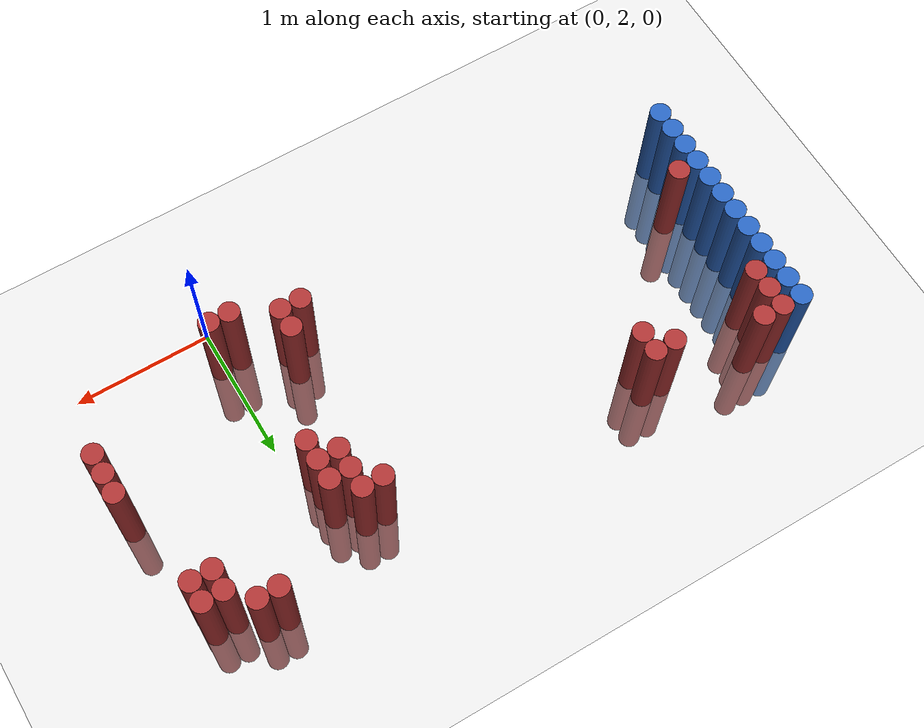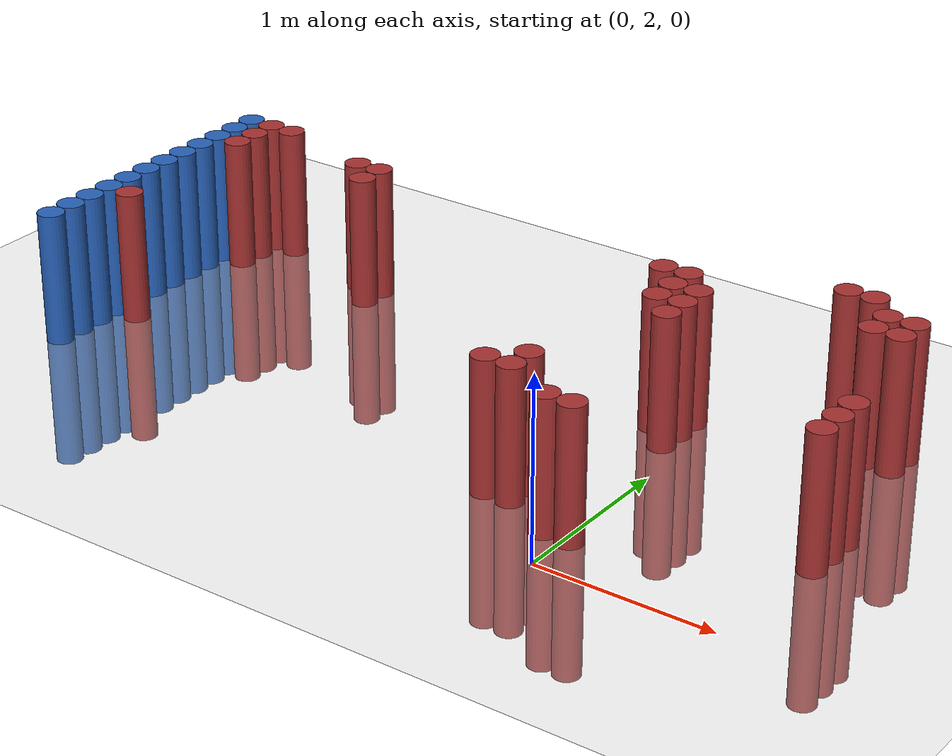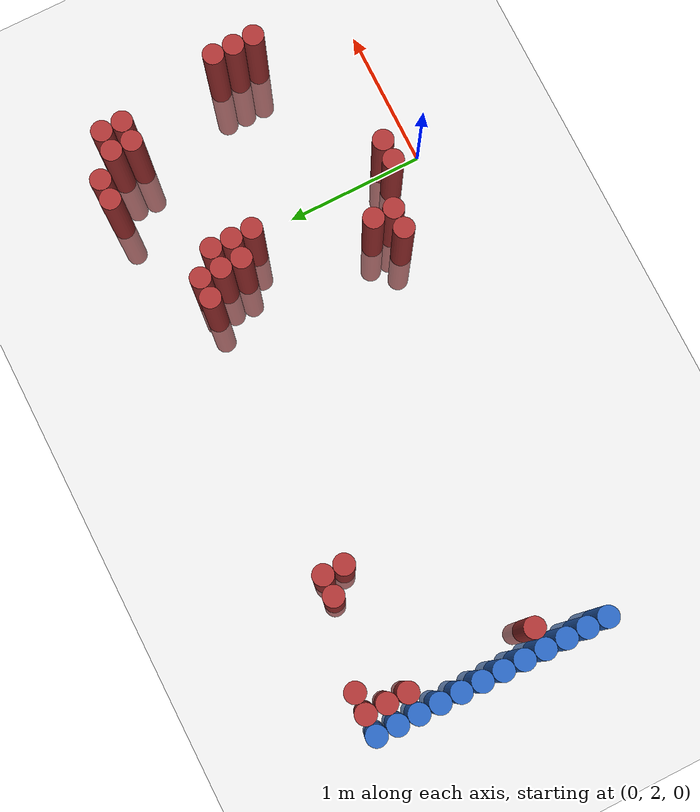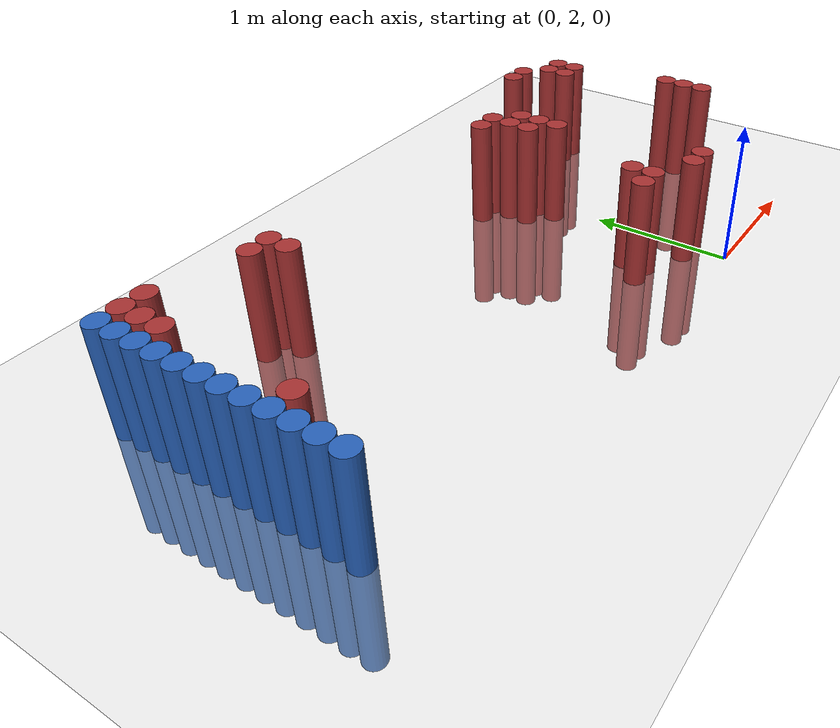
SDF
<sdf version="1.6">
 <world name="default">
  <model name="ground_plane">
   <static>1</static>
   <link name="link">
    <collision name="collision">
     <geometry><plane><normal>0 0 1</normal><size>100 100</size></plane></geometry>
     <surface><friction><ode><mu>100</mu><mu2>50</mu2></ode></friction></surface>
    </collision>
    <visual name="visual">
     <cast_shadows>0</cast_shadows>
     <geometry><plane><normal>0 0 1</normal><size>100 100</size></plane></geometry>
     <material>
      <script><uri>file://media/materials/scripts/gazebo.material</uri><name>Gazebo/Grey</name></script>
     </material>
    </visual>
   </link>
  </model>
  <model name="unit_cylinder_147">
   <static>1</static>
   <pose>-3.425000 2.425000 0.000000 0.000000 0.000000 0.000000</pose>
   <link name="link">
    <inertial>
     <mass>1</mass>
     <inertia><ixx>0.145833</ixx><ixy>0</ixy><ixz>0</ixz><iyy>0.145833</iyy><iyz>0</iyz><izz>0.125</izz></inertia>
    </inertial>
    <collision name="collision">
     <geometry><cylinder><radius>0.075000</radius><length>1.5</length></cylinder></geometry>
    </collision>
    <visual name="visual">
     <geometry><cylinder><radius>0.075000</radius><length>1.5</length></cylinder></geometry>
     <material>
      <ambient>0.152000 0.379000 0.720000 1</ambient>
      <diffuse>0.152000 0.379000 0.720000 1</diffuse>
     </material>
     <material>
      <script><name>Gazebo/Grey</name><uri>file://media/materials/scripts/gazebo.material</uri></script>
     </material>
    </visual>
   </link>
  </model>
  <model name="unit_cylinder_149">
   <static>1</static>
   <pose>-3.425000 2.575000 0.000000 0.000000 0.000000 0.000000</pose>
   <link name="link">
    <inertial>
     <mass>1</mass>
     <inertia><ixx>0.145833</ixx><ixy>0</ixy><ixz>0</ixz><iyy>0.145833</iyy><iyz>0</iyz><izz>0.125</izz></inertia>
    </inertial>
    <collision name="collision">
     <geometry><cylinder><radius>0.075000</radius><length>1.5</length></cylinder></geometry>
    </collision>
    <visual name="visual">
     <geometry><cylinder><radius>0.075000</radius><length>1.5</length></cylinder></geometry>
     <material>
      <ambient>0.152000 0.379000 0.720000 1</ambient>
      <diffuse>0.152000 0.379000 0.720000 1</diffuse>
     </material>
     <material>
      <script><name>Gazebo/Grey</name><uri>file://media/materials/scripts/gazebo.material</uri></script>
     </material>
    </visual>
   </link>
  </model>
  <model name="unit_cylinder_151">
   <static>1</static>
   <pose>-3.425000 2.725000 0.000000 0.000000 0.000000 0.000000</pose>
   <link name="link">
    <inertial>
     <mass>1</mass>
     <inertia><ixx>0.145833</ixx><ixy>0</ixy><ixz>0</ixz><iyy>0.145833</iyy><iyz>0</iyz><izz>0.125</izz></inertia>
    </inertial>
    <collision name="collision">
     <geometry><cylinder><radius>0.075000</radius><length>1.5</length></cylinder></geometry>
    </collision>
    <visual name="visual">
     <geometry><cylinder><radius>0.075000</radius><length>1.5</length></cylinder></geometry>
     <material>
      <ambient>0.152000 0.379000 0.720000 1</ambient>
      <diffuse>0.152000 0.379000 0.720000 1</diffuse>
     </material>
     <material>
      <script><name>Gazebo/Grey</name><uri>file://media/materials/scripts/gazebo.material</uri></script>
     </material>
    </visual>
   </link>
  </model>
  <model name="unit_cylinder_153">
   <static>1</static>
   <pose>-3.425000 2.875000 0.000000 0.000000 0.000000 0.000000</pose>
   <link name="link">
    <inertial>
     <mass>1</mass>
     <inertia><ixx>0.145833</ixx><ixy>0</ixy><ixz>0</ixz><iyy>0.145833</iyy><iyz>0</iyz><izz>0.125</izz></inertia>
    </inertial>
    <collision name="collision">
     <geometry><cylinder><radius>0.075000</radius><length>1.5</length></cylinder></geometry>
    </collision>
    <visual name="visual">
     <geometry><cylinder><radius>0.075000</radius><length>1.5</length></cylinder></geometry>
     <material>
      <ambient>0.152000 0.379000 0.720000 1</ambient>
      <diffuse>0.152000 0.379000 0.720000 1</diffuse>
     </material>
     <material>
      <script><name>Gazebo/Grey</name><uri>file://media/materials/scripts/gazebo.material</uri></script>
     </material>
    </visual>
   </link>
  </model>
  <model name="unit_cylinder_155">
   <static>1</static>
   <pose>-3.425000 3.025000 0.000000 0.000000 0.000000 0.000000</pose>
   <link name="link">
    <inertial>
     <mass>1</mass>
     <inertia><ixx>0.145833</ixx><ixy>0</ixy><ixz>0</ixz><iyy>0.145833</iyy><iyz>0</iyz><izz>0.125</izz></inertia>
    </inertial>
    <collision name="collision">
     <geometry><cylinder><radius>0.075000</radius><length>1.5</length></cylinder></geometry>
    </collision>
    <visual name="visual">
     <geometry><cylinder><radius>0.075000</radius><length>1.5</length></cylinder></geometry>
     <material>
      <ambient>0.152000 0.379000 0.720000 1</ambient>
      <diffuse>0.152000 0.379000 0.720000 1</diffuse>
     </material>
     <material>
      <script><name>Gazebo/Grey</name><uri>file://media/materials/scripts/gazebo.material</uri></script>
     </material>
    </visual>
   </link>
  </model>
  <model name="unit_cylinder_157">
   <static>1</static>
   <pose>-3.425000 3.175000 0.000000 0.000000 0.000000 0.000000</pose>
   <link name="link">
    <inertial>
     <mass>1</mass>
     <inertia><ixx>0.145833</ixx><ixy>0</ixy><ixz>0</ixz><iyy>0.145833</iyy><iyz>0</iyz><izz>0.125</izz></inertia>
    </inertial>
    <collision name="collision">
     <geometry><cylinder><radius>0.075000</radius><length>1.5</length></cylinder></geometry>
    </collision>
    <visual name="visual">
     <geometry><cylinder><radius>0.075000</radius><length>1.5</length></cylinder></geometry>
     <material>
      <ambient>0.152000 0.379000 0.720000 1</ambient>
      <diffuse>0.152000 0.379000 0.720000 1</diffuse>
     </material>
     <material>
      <script><name>Gazebo/Grey</name><uri>file://media/materials/scripts/gazebo.material</uri></script>
     </material>
    </visual>
   </link>
  </model>
  <model name="unit_cylinder_159">
   <static>1</static>
   <pose>-3.425000 3.325000 0.000000 0.000000 0.000000 0.000000</pose>
   <link name="link">
    <inertial>
     <mass>1</mass>
     <inertia><ixx>0.145833</ixx><ixy>0</ixy><ixz>0</ixz><iyy>0.145833</iyy><iyz>0</iyz><izz>0.125</izz></inertia>
    </inertial>
    <collision name="collision">
     <geometry><cylinder><radius>0.075000</radius><length>1.5</length></cylinder></geometry>
    </collision>
    <visual name="visual">
     <geometry><cylinder><radius>0.075000</radius><length>1.5</length></cylinder></geometry>
     <material>
      <ambient>0.152000 0.379000 0.720000 1</ambient>
      <diffuse>0.152000 0.379000 0.720000 1</diffuse>
     </material>
     <material>
      <script><name>Gazebo/Grey</name><uri>file://media/materials/scripts/gazebo.material</uri></script>
     </material>
    </visual>
   </link>
  </model>
  <model name="unit_cylinder_161">
   <static>1</static>
   <pose>-3.425000 3.475000 0.000000 0.000000 0.000000 0.000000</pose>
   <link name="link">
    <inertial>
     <mass>1</mass>
     <inertia><ixx>0.145833</ixx><ixy>0</ixy><ixz>0</ixz><iyy>0.145833</iyy><iyz>0</iyz><izz>0.125</izz></inertia>
    </inertial>
    <collision name="collision">
     <geometry><cylinder><radius>0.075000</radius><length>1.5</length></cylinder></geometry>
    </collision>
    <visual name="visual">
     <geometry><cylinder><radius>0.075000</radius><length>1.5</length></cylinder></geometry>
     <material>
      <ambient>0.152000 0.379000 0.720000 1</ambient>
      <diffuse>0.152000 0.379000 0.720000 1</diffuse>
     </material>
     <material>
      <script><name>Gazebo/Grey</name><uri>file://media/materials/scripts/gazebo.material</uri></script>
     </material>
    </visual>
   </link>
  </model>
  <model name="unit_cylinder_163">
   <static>1</static>
   <pose>-3.425000 3.625000 0.000000 0.000000 0.000000 0.000000</pose>
   <link name="link">
    <inertial>
     <mass>1</mass>
     <inertia><ixx>0.145833</ixx><ixy>0</ixy><ixz>0</ixz><iyy>0.145833</iyy><iyz>0</iyz><izz>0.125</izz></inertia>
    </inertial>
    <collision name="collision">
     <geometry><cylinder><radius>0.075000</radius><length>1.5</length></cylinder></geometry>
    </collision>
    <visual name="visual">
     <geometry><cylinder><radius>0.075000</radius><length>1.5</length></cylinder></geometry>
     <material>
      <ambient>0.152000 0.379000 0.720000 1</ambient>
      <diffuse>0.152000 0.379000 0.720000 1</diffuse>
     </material>
     <material>
      <script><name>Gazebo/Grey</name><uri>file://media/materials/scripts/gazebo.material</uri></script>
     </material>
    </visual>
   </link>
  </model>
  <model name="unit_cylinder_165">
   <static>1</static>
   <pose>-3.425000 3.775000 0.000000 0.000000 0.000000 0.000000</pose>
   <link name="link">
    <inertial>
     <mass>1</mass>
     <inertia><ixx>0.145833</ixx><ixy>0</ixy><ixz>0</ixz><iyy>0.145833</iyy><iyz>0</iyz><izz>0.125</izz></inertia>
    </inertial>
    <collision name="collision">
     <geometry><cylinder><radius>0.075000</radius><length>1.5</length></cylinder></geometry>
    </collision>
    <visual name="visual">
     <geometry><cylinder><radius>0.075000</radius><length>1.5</length></cylinder></geometry>
     <material>
      <ambient>0.152000 0.379000 0.720000 1</ambient>
      <diffuse>0.152000 0.379000 0.720000 1</diffuse>
     </material>
     <material>
      <script><name>Gazebo/Grey</name><uri>file://media/materials/scripts/gazebo.material</uri></script>
     </material>
    </visual>
   </link>
  </model>
  <model name="unit_cylinder_167">
   <static>1</static>
   <pose>-3.425000 3.925000 0.000000 0.000000 0.000000 0.000000</pose>
   <link name="link">
    <inertial>
     <mass>1</mass>
     <inertia><ixx>0.145833</ixx><ixy>0</ixy><ixz>0</ixz><iyy>0.145833</iyy><iyz>0</iyz><izz>0.125</izz></inertia>
    </inertial>
    <collision name="collision">
     <geometry><cylinder><radius>0.075000</radius><length>1.5</length></cylinder></geometry>
    </collision>
    <visual name="visual">
     <geometry><cylinder><radius>0.075000</radius><length>1.5</length></cylinder></geometry>
     <material>
      <ambient>0.152000 0.379000 0.720000 1</ambient>
      <diffuse>0.152000 0.379000 0.720000 1</diffuse>
     </material>
     <material>
      <script><name>Gazebo/Grey</name><uri>file://media/materials/scripts/gazebo.material</uri></script>
     </material>
    </visual>
   </link>
  </model>
  <model name="unit_cylinder_169">
   <static>1</static>
   <pose>-3.425000 4.075000 0.000000 0.000000 0.000000 0.000000</pose>
   <link name="link">
    <inertial>
     <mass>1</mass>
     <inertia><ixx>0.145833</ixx><ixy>0</ixy><ixz>0</ixz><iyy>0.145833</iyy><iyz>0</iyz><izz>0.125</izz></inertia>
    </inertial>
    <collision name="collision">
     <geometry><cylinder><radius>0.075000</radius><length>1.5</length></cylinder></geometry>
    </collision>
    <visual name="visual">
     <geometry><cylinder><radius>0.075000</radius><length>1.5</length></cylinder></geometry>
     <material>
      <ambient>0.152000 0.379000 0.720000 1</ambient>
      <diffuse>0.152000 0.379000 0.720000 1</diffuse>
     </material>
     <material>
      <script><name>Gazebo/Grey</name><uri>file://media/materials/scripts/gazebo.material</uri></script>
     </material>
    </visual>
   </link>
  </model>
  <model name="unit_cylinder_237">
   <static>1</static>
   <pose>-3.425000 2.425000 0.000000 0.000000 0.000000 0.000000</pose>
   <link name="link">
    <inertial>
     <mass>1</mass>
     <inertia><ixx>0.145833</ixx><ixy>0</ixy><ixz>0</ixz><iyy>0.145833</iyy><iyz>0</iyz><izz>0.125</izz></inertia>
    </inertial>
    <collision name="collision">
     <geometry><cylinder><radius>0.075000</radius><length>1.5</length></cylinder></geometry>
    </collision>
    <visual name="visual">
     <geometry><cylinder><radius>0.075000</radius><length>1.5</length></cylinder></geometry>
     <material>
      <ambient>0.152000 0.379000 0.720000 1</ambient>
      <diffuse>0.152000 0.379000 0.720000 1</diffuse>
     </material>
     <material>
      <script><name>Gazebo/Grey</name><uri>file://media/materials/scripts/gazebo.material</uri></script>
     </material>
    </visual>
   </link>
  </model>
  <model name="unit_cylinder_238">
   <static>1</static>
   <pose>-3.425000 2.575000 0.000000 0.000000 0.000000 0.000000</pose>
   <link name="link">
    <inertial>
     <mass>1</mass>
     <inertia><ixx>0.145833</ixx><ixy>0</ixy><ixz>0</ixz><iyy>0.145833</iyy><iyz>0</iyz><izz>0.125</izz></inertia>
    </inertial>
    <collision name="collision">
     <geometry><cylinder><radius>0.075000</radius><length>1.5</length></cylinder></geometry>
    </collision>
    <visual name="visual">
     <geometry><cylinder><radius>0.075000</radius><length>1.5</length></cylinder></geometry>
     <material>
      <ambient>0.152000 0.379000 0.720000 1</ambient>
      <diffuse>0.152000 0.379000 0.720000 1</diffuse>
     </material>
     <material>
      <script><name>Gazebo/Grey</name><uri>file://media/materials/scripts/gazebo.material</uri></script>
     </material>
    </visual>
   </link>
  </model>
  <model name="unit_cylinder_239">
   <static>1</static>
   <pose>-3.425000 2.725000 0.000000 0.000000 0.000000 0.000000</pose>
   <link name="link">
    <inertial>
     <mass>1</mass>
     <inertia><ixx>0.145833</ixx><ixy>0</ixy><ixz>0</ixz><iyy>0.145833</iyy><iyz>0</iyz><izz>0.125</izz></inertia>
    </inertial>
    <collision name="collision">
     <geometry><cylinder><radius>0.075000</radius><length>1.5</length></cylinder></geometry>
    </collision>
    <visual name="visual">
     <geometry><cylinder><radius>0.075000</radius><length>1.5</length></cylinder></geometry>
     <material>
      <ambient>0.152000 0.379000 0.720000 1</ambient>
      <diffuse>0.152000 0.379000 0.720000 1</diffuse>
     </material>
     <material>
      <script><name>Gazebo/Grey</name><uri>file://media/materials/scripts/gazebo.material</uri></script>
     </material>
    </visual>
   </link>
  </model>
  <model name="unit_cylinder_240">
   <static>1</static>
   <pose>-3.425000 2.875000 0.000000 0.000000 0.000000 0.000000</pose>
   <link name="link">
    <inertial>
     <mass>1</mass>
     <inertia><ixx>0.145833</ixx><ixy>0</ixy><ixz>0</ixz><iyy>0.145833</iyy><iyz>0</iyz><izz>0.125</izz></inertia>
    </inertial>
    <collision name="collision">
     <geometry><cylinder><radius>0.075000</radius><length>1.5</length></cylinder></geometry>
    </collision>
    <visual name="visual">
     <geometry><cylinder><radius>0.075000</radius><length>1.5</length></cylinder></geometry>
     <material>
      <ambient>0.152000 0.379000 0.720000 1</ambient>
      <diffuse>0.152000 0.379000 0.720000 1</diffuse>
     </material>
     <material>
      <script><name>Gazebo/Grey</name><uri>file://media/materials/scripts/gazebo.material</uri></script>
     </material>
    </visual>
   </link>
  </model>
  <model name="unit_cylinder_241">
   <static>1</static>
   <pose>-3.425000 3.025000 0.000000 0.000000 0.000000 0.000000</pose>
   <link name="link">
    <inertial>
     <mass>1</mass>
     <inertia><ixx>0.145833</ixx><ixy>0</ixy><ixz>0</ixz><iyy>0.145833</iyy><iyz>0</iyz><izz>0.125</izz></inertia>
    </inertial>
    <collision name="collision">
     <geometry><cylinder><radius>0.075000</radius><length>1.5</length></cylinder></geometry>
    </collision>
    <visual name="visual">
     <geometry><cylinder><radius>0.075000</radius><length>1.5</length></cylinder></geometry>
     <material>
      <ambient>0.152000 0.379000 0.720000 1</ambient>
      <diffuse>0.152000 0.379000 0.720000 1</diffuse>
     </material>
     <material>
      <script><name>Gazebo/Grey</name><uri>file://media/materials/scripts/gazebo.material</uri></script>
     </material>
    </visual>
   </link>
  </model>
  <model name="unit_cylinder_242">
   <static>1</static>
   <pose>-3.425000 3.175000 0.000000 0.000000 0.000000 0.000000</pose>
   <link name="link">
    <inertial>
     <mass>1</mass>
     <inertia><ixx>0.145833</ixx><ixy>0</ixy><ixz>0</ixz><iyy>0.145833</iyy><iyz>0</iyz><izz>0.125</izz></inertia>
    </inertial>
    <collision name="collision">
     <geometry><cylinder><radius>0.075000</radius><length>1.5</length></cylinder></geometry>
    </collision>
    <visual name="visual">
     <geometry><cylinder><radius>0.075000</radius><length>1.5</length></cylinder></geometry>
     <material>
      <ambient>0.152000 0.379000 0.720000 1</ambient>
      <diffuse>0.152000 0.379000 0.720000 1</diffuse>
     </material>
     <material>
      <script><name>Gazebo/Grey</name><uri>file://media/materials/scripts/gazebo.material</uri></script>
     </material>
    </visual>
   </link>
  </model>
  <model name="unit_cylinder_243">
   <static>1</static>
   <pose>-3.425000 3.325000 0.000000 0.000000 0.000000 0.000000</pose>
   <link name="link">
    <inertial>
     <mass>1</mass>
     <inertia><ixx>0.145833</ixx><ixy>0</ixy><ixz>0</ixz><iyy>0.145833</iyy><iyz>0</iyz><izz>0.125</izz></inertia>
    </inertial>
    <collision name="collision">
     <geometry><cylinder><radius>0.075000</radius><length>1.5</length></cylinder></geometry>
    </collision>
    <visual name="visual">
     <geometry><cylinder><radius>0.075000</radius><length>1.5</length></cylinder></geometry>
     <material>
      <ambient>0.152000 0.379000 0.720000 1</ambient>
      <diffuse>0.152000 0.379000 0.720000 1</diffuse>
     </material>
     <material>
      <script><name>Gazebo/Grey</name><uri>file://media/materials/scripts/gazebo.material</uri></script>
     </material>
    </visual>
   </link>
  </model>
  <model name="unit_cylinder_244">
   <static>1</static>
   <pose>-3.425000 3.475000 0.000000 0.000000 0.000000 0.000000</pose>
   <link name="link">
    <inertial>
     <mass>1</mass>
     <inertia><ixx>0.145833</ixx><ixy>0</ixy><ixz>0</ixz><iyy>0.145833</iyy><iyz>0</iyz><izz>0.125</izz></inertia>
    </inertial>
    <collision name="collision">
     <geometry><cylinder><radius>0.075000</radius><length>1.5</length></cylinder></geometry>
    </collision>
    <visual name="visual">
     <geometry><cylinder><radius>0.075000</radius><length>1.5</length></cylinder></geometry>
     <material>
      <ambient>0.152000 0.379000 0.720000 1</ambient>
      <diffuse>0.152000 0.379000 0.720000 1</diffuse>
     </material>
     <material>
      <script><name>Gazebo/Grey</name><uri>file://media/materials/scripts/gazebo.material</uri></script>
     </material>
    </visual>
   </link>
  </model>
  <model name="unit_cylinder_245">
   <static>1</static>
   <pose>-3.425000 3.625000 0.000000 0.000000 0.000000 0.000000</pose>
   <link name="link">
    <inertial>
     <mass>1</mass>
     <inertia><ixx>0.145833</ixx><ixy>0</ixy><ixz>0</ixz><iyy>0.145833</iyy><iyz>0</iyz><izz>0.125</izz></inertia>
    </inertial>
    <collision name="collision">
     <geometry><cylinder><radius>0.075000</radius><length>1.5</length></cylinder></geometry>
    </collision>
    <visual name="visual">
     <geometry><cylinder><radius>0.075000</radius><length>1.5</length></cylinder></geometry>
     <material>
      <ambient>0.152000 0.379000 0.720000 1</ambient>
      <diffuse>0.152000 0.379000 0.720000 1</diffuse>
     </material>
     <material>
      <script><name>Gazebo/Grey</name><uri>file://media/materials/scripts/gazebo.material</uri></script>
     </material>
    </visual>
   </link>
  </model>
  <model name="unit_cylinder_246">
   <static>1</static>
   <pose>-3.425000 3.775000 0.000000 0.000000 0.000000 0.000000</pose>
   <link name="link">
    <inertial>
     <mass>1</mass>
     <inertia><ixx>0.145833</ixx><ixy>0</ixy><ixz>0</ixz><iyy>0.145833</iyy><iyz>0</iyz><izz>0.125</izz></inertia>
    </inertial>
    <collision name="collision">
     <geometry><cylinder><radius>0.075000</radius><length>1.5</length></cylinder></geometry>
    </collision>
    <visual name="visual">
     <geometry><cylinder><radius>0.075000</radius><length>1.5</length></cylinder></geometry>
     <material>
      <ambient>0.152000 0.379000 0.720000 1</ambient>
      <diffuse>0.152000 0.379000 0.720000 1</diffuse>
     </material>
     <material>
      <script><name>Gazebo/Grey</name><uri>file://media/materials/scripts/gazebo.material</uri></script>
     </material>
    </visual>
   </link>
  </model>
  <model name="unit_cylinder_247">
   <static>1</static>
   <pose>-3.425000 3.925000 0.000000 0.000000 0.000000 0.000000</pose>
   <link name="link">
    <inertial>
     <mass>1</mass>
     <inertia><ixx>0.145833</ixx><ixy>0</ixy><ixz>0</ixz><iyy>0.145833</iyy><iyz>0</iyz><izz>0.125</izz></inertia>
    </inertial>
    <collision name="collision">
     <geometry><cylinder><radius>0.075000</radius><length>1.5</length></cylinder></geometry>
    </collision>
    <visual name="visual">
     <geometry><cylinder><radius>0.075000</radius><length>1.5</length></cylinder></geometry>
     <material>
      <ambient>0.152000 0.379000 0.720000 1</ambient>
      <diffuse>0.152000 0.379000 0.720000 1</diffuse>
     </material>
     <material>
      <script><name>Gazebo/Grey</name><uri>file://media/materials/scripts/gazebo.material</uri></script>
     </material>
    </visual>
   </link>
  </model>
  <model name="unit_cylinder_248">
   <static>1</static>
   <pose>-3.425000 4.075000 0.000000 0.000000 0.000000 0.000000</pose>
   <link name="link">
    <inertial>
     <mass>1</mass>
     <inertia><ixx>0.145833</ixx><ixy>0</ixy><ixz>0</ixz><iyy>0.145833</iyy><iyz>0</iyz><izz>0.125</izz></inertia>
    </inertial>
    <collision name="collision">
     <geometry><cylinder><radius>0.075000</radius><length>1.5</length></cylinder></geometry>
    </collision>
    <visual name="visual">
     <geometry><cylinder><radius>0.075000</radius><length>1.5</length></cylinder></geometry>
     <material>
      <ambient>0.152000 0.379000 0.720000 1</ambient>
      <diffuse>0.152000 0.379000 0.720000 1</diffuse>
     </material>
     <material>
      <script><name>Gazebo/Grey</name><uri>file://media/materials/scripts/gazebo.material</uri></script>
     </material>
    </visual>
   </link>
  </model>
  <model name="unit_cylinder_264">
   <static>1</static>
   <pose>-3.275000 2.875000 0.000000 0.000000 0.000000 0.000000</pose>
   <link name="link">
    <inertial>
     <mass>1</mass>
     <inertia><ixx>0.145833</ixx><ixy>0</ixy><ixz>0</ixz><iyy>0.145833</iyy><iyz>0</iyz><izz>0.125</izz></inertia>
    </inertial>
    <collision name="collision">
     <geometry><cylinder><radius>0.075000</radius><length>1.5</length></cylinder></geometry>
    </collision>
    <visual name="visual">
     <geometry><cylinder><radius>0.075000</radius><length>1.5</length></cylinder></geometry>
     <material>
      <ambient>0.648000 0.192000 0.192000 1</ambient>
      <diffuse>0.648000 0.192000 0.192000 1</diffuse>
     </material>
     <material>
      <script><name>Gazebo/Grey</name><uri>file://media/materials/scripts/gazebo.material</uri></script>
     </material>
    </visual>
   </link>
  </model>
  <model name="unit_cylinder_265">
   <static>1</static>
   <pose>-3.275000 3.775000 0.000000 0.000000 0.000000 0.000000</pose>
   <link name="link">
    <inertial>
     <mass>1</mass>
     <inertia><ixx>0.145833</ixx><ixy>0</ixy><ixz>0</ixz><iyy>0.145833</iyy><iyz>0</iyz><izz>0.125</izz></inertia>
    </inertial>
    <collision name="collision">
     <geometry><cylinder><radius>0.075000</radius><length>1.5</length></cylinder></geometry>
    </collision>
    <visual name="visual">
     <geometry><cylinder><radius>0.075000</radius><length>1.5</length></cylinder></geometry>
     <material>
      <ambient>0.648000 0.192000 0.192000 1</ambient>
      <diffuse>0.648000 0.192000 0.192000 1</diffuse>
     </material>
     <material>
      <script><name>Gazebo/Grey</name><uri>file://media/materials/scripts/gazebo.material</uri></script>
     </material>
    </visual>
   </link>
  </model>
  <model name="unit_cylinder_266">
   <static>1</static>
   <pose>-3.275000 3.925000 0.000000 0.000000 0.000000 0.000000</pose>
   <link name="link">
    <inertial>
     <mass>1</mass>
     <inertia><ixx>0.145833</ixx><ixy>0</ixy><ixz>0</ixz><iyy>0.145833</iyy><iyz>0</iyz><izz>0.125</izz></inertia>
    </inertial>
    <collision name="collision">
     <geometry><cylinder><radius>0.075000</radius><length>1.5</length></cylinder></geometry>
    </collision>
    <visual name="visual">
     <geometry><cylinder><radius>0.075000</radius><length>1.5</length></cylinder></geometry>
     <material>
      <ambient>0.648000 0.192000 0.192000 1</ambient>
      <diffuse>0.648000 0.192000 0.192000 1</diffuse>
     </material>
     <material>
      <script><name>Gazebo/Grey</name><uri>file://media/materials/scripts/gazebo.material</uri></script>
     </material>
    </visual>
   </link>
  </model>
  <model name="unit_cylinder_267">
   <static>1</static>
   <pose>-3.275000 4.075000 0.000000 0.000000 0.000000 0.000000</pose>
   <link name="link">
    <inertial>
     <mass>1</mass>
     <inertia><ixx>0.145833</ixx><ixy>0</ixy><ixz>0</ixz><iyy>0.145833</iyy><iyz>0</iyz><izz>0.125</izz></inertia>
    </inertial>
    <collision name="collision">
     <geometry><cylinder><radius>0.075000</radius><length>1.5</length></cylinder></geometry>
    </collision>
    <visual name="visual">
     <geometry><cylinder><radius>0.075000</radius><length>1.5</length></cylinder></geometry>
     <material>
      <ambient>0.648000 0.192000 0.192000 1</ambient>
      <diffuse>0.648000 0.192000 0.192000 1</diffuse>
     </material>
     <material>
      <script><name>Gazebo/Grey</name><uri>file://media/materials/scripts/gazebo.material</uri></script>
     </material>
    </visual>
   </link>
  </model>
  <model name="unit_cylinder_272">
   <static>1</static>
   <pose>-3.125000 4.075000 0.000000 0.000000 0.000000 0.000000</pose>
   <link name="link">
    <inertial>
     <mass>1</mass>
     <inertia><ixx>0.145833</ixx><ixy>0</ixy><ixz>0</ixz><iyy>0.145833</iyy><iyz>0</iyz><izz>0.125</izz></inertia>
    </inertial>
    <collision name="collision">
     <geometry><cylinder><radius>0.075000</radius><length>1.5</length></cylinder></geometry>
    </collision>
    <visual name="visual">
     <geometry><cylinder><radius>0.075000</radius><length>1.5</length></cylinder></geometry>
     <material>
      <ambient>0.648000 0.192000 0.192000 1</ambient>
      <diffuse>0.648000 0.192000 0.192000 1</diffuse>
     </material>
     <material>
      <script><name>Gazebo/Grey</name><uri>file://media/materials/scripts/gazebo.material</uri></script>
     </material>
    </visual>
   </link>
  </model>
  <model name="unit_cylinder_290">
   <static>1</static>
   <pose>-2.525000 3.925000 0.000000 0.000000 0.000000 0.000000</pose>
   <link name="link">
    <inertial>
     <mass>1</mass>
     <inertia><ixx>0.145833</ixx><ixy>0</ixy><ixz>0</ixz><iyy>0.145833</iyy><iyz>0</iyz><izz>0.125</izz></inertia>
    </inertial>
    <collision name="collision">
     <geometry><cylinder><radius>0.075000</radius><length>1.5</length></cylinder></geometry>
    </collision>
    <visual name="visual">
     <geometry><cylinder><radius>0.075000</radius><length>1.5</length></cylinder></geometry>
     <material>
      <ambient>0.648000 0.192000 0.192000 1</ambient>
      <diffuse>0.648000 0.192000 0.192000 1</diffuse>
     </material>
     <material>
      <script><name>Gazebo/Grey</name><uri>file://media/materials/scripts/gazebo.material</uri></script>
     </material>
    </visual>
   </link>
  </model>
  <model name="unit_cylinder_293">
   <static>1</static>
   <pose>-2.375000 3.775000 0.000000 0.000000 0.000000 0.000000</pose>
   <link name="link">
    <inertial>
     <mass>1</mass>
     <inertia><ixx>0.145833</ixx><ixy>0</ixy><ixz>0</ixz><iyy>0.145833</iyy><iyz>0</iyz><izz>0.125</izz></inertia>
    </inertial>
    <collision name="collision">
     <geometry><cylinder><radius>0.075000</radius><length>1.5</length></cylinder></geometry>
    </collision>
    <visual name="visual">
     <geometry><cylinder><radius>0.075000</radius><length>1.5</length></cylinder></geometry>
     <material>
      <ambient>0.648000 0.192000 0.192000 1</ambient>
      <diffuse>0.648000 0.192000 0.192000 1</diffuse>
     </material>
     <material>
      <script><name>Gazebo/Grey</name><uri>file://media/materials/scripts/gazebo.material</uri></script>
     </material>
    </visual>
   </link>
  </model>
  <model name="unit_cylinder_294">
   <static>1</static>
   <pose>-2.375000 3.925000 0.000000 0.000000 0.000000 0.000000</pose>
   <link name="link">
    <inertial>
     <mass>1</mass>
     <inertia><ixx>0.145833</ixx><ixy>0</ixy><ixz>0</ixz><iyy>0.145833</iyy><iyz>0</iyz><izz>0.125</izz></inertia>
    </inertial>
    <collision name="collision">
     <geometry><cylinder><radius>0.075000</radius><length>1.5</length></cylinder></geometry>
    </collision>
    <visual name="visual">
     <geometry><cylinder><radius>0.075000</radius><length>1.5</length></cylinder></geometry>
     <material>
      <ambient>0.648000 0.192000 0.192000 1</ambient>
      <diffuse>0.648000 0.192000 0.192000 1</diffuse>
     </material>
     <material>
      <script><name>Gazebo/Grey</name><uri>file://media/materials/scripts/gazebo.material</uri></script>
     </material>
    </visual>
   </link>
  </model>
  <model name="unit_cylinder_326">
   <static>1</static>
   <pose>-0.575000 2.425000 0.000000 0.000000 0.000000 0.000000</pose>
   <link name="link">
    <inertial>
     <mass>1</mass>
     <inertia><ixx>0.145833</ixx><ixy>0</ixy><ixz>0</ixz><iyy>0.145833</iyy><iyz>0</iyz><izz>0.125</izz></inertia>
    </inertial>
    <collision name="collision">
     <geometry><cylinder><radius>0.075000</radius><length>1.5</length></cylinder></geometry>
    </collision>
    <visual name="visual">
     <geometry><cylinder><radius>0.075000</radius><length>1.5</length></cylinder></geometry>
     <material>
      <ambient>0.648000 0.192000 0.192000 1</ambient>
      <diffuse>0.648000 0.192000 0.192000 1</diffuse>
     </material>
     <material>
      <script><name>Gazebo/Grey</name><uri>file://media/materials/scripts/gazebo.material</uri></script>
     </material>
    </visual>
   </link>
  </model>
  <model name="unit_cylinder_336">
   <static>1</static>
   <pose>-0.425000 2.425000 0.000000 0.000000 0.000000 0.000000</pose>
   <link name="link">
    <inertial>
     <mass>1</mass>
     <inertia><ixx>0.145833</ixx><ixy>0</ixy><ixz>0</ixz><iyy>0.145833</iyy><iyz>0</iyz><izz>0.125</izz></inertia>
    </inertial>
    <collision name="collision">
     <geometry><cylinder><radius>0.075000</radius><length>1.5</length></cylinder></geometry>
    </collision>
    <visual name="visual">
     <geometry><cylinder><radius>0.075000</radius><length>1.5</length></cylinder></geometry>
     <material>
      <ambient>0.648000 0.192000 0.192000 1</ambient>
      <diffuse>0.648000 0.192000 0.192000 1</diffuse>
     </material>
     <material>
      <script><name>Gazebo/Grey</name><uri>file://media/materials/scripts/gazebo.material</uri></script>
     </material>
    </visual>
   </link>
  </model>
  <model name="unit_cylinder_337">
   <static>1</static>
   <pose>-0.425000 2.575000 0.000000 0.000000 0.000000 0.000000</pose>
   <link name="link">
    <inertial>
     <mass>1</mass>
     <inertia><ixx>0.145833</ixx><ixy>0</ixy><ixz>0</ixz><iyy>0.145833</iyy><iyz>0</iyz><izz>0.125</izz></inertia>
    </inertial>
    <collision name="collision">
     <geometry><cylinder><radius>0.075000</radius><length>1.5</length></cylinder></geometry>
    </collision>
    <visual name="visual">
     <geometry><cylinder><radius>0.075000</radius><length>1.5</length></cylinder></geometry>
     <material>
      <ambient>0.648000 0.192000 0.192000 1</ambient>
      <diffuse>0.648000 0.192000 0.192000 1</diffuse>
     </material>
     <material>
      <script><name>Gazebo/Grey</name><uri>file://media/materials/scripts/gazebo.material</uri></script>
     </material>
    </visual>
   </link>
  </model>
  <model name="unit_cylinder_338">
   <static>1</static>
   <pose>-0.425000 3.775000 0.000000 0.000000 0.000000 0.000000</pose>
   <link name="link">
    <inertial>
     <mass>1</mass>
     <inertia><ixx>0.145833</ixx><ixy>0</ixy><ixz>0</ixz><iyy>0.145833</iyy><iyz>0</iyz><izz>0.125</izz></inertia>
    </inertial>
    <collision name="collision">
     <geometry><cylinder><radius>0.075000</radius><length>1.5</length></cylinder></geometry>
    </collision>
    <visual name="visual">
     <geometry><cylinder><radius>0.075000</radius><length>1.5</length></cylinder></geometry>
     <material>
      <ambient>0.648000 0.192000 0.192000 1</ambient>
      <diffuse>0.648000 0.192000 0.192000 1</diffuse>
     </material>
     <material>
      <script><name>Gazebo/Grey</name><uri>file://media/materials/scripts/gazebo.material</uri></script>
     </material>
    </visual>
   </link>
  </model>
  <model name="unit_cylinder_354">
   <static>1</static>
   <pose>-0.275000 3.475000 0.000000 0.000000 0.000000 0.000000</pose>
   <link name="link">
    <inertial>
     <mass>1</mass>
     <inertia><ixx>0.145833</ixx><ixy>0</ixy><ixz>0</ixz><iyy>0.145833</iyy><iyz>0</iyz><izz>0.125</izz></inertia>
    </inertial>
    <collision name="collision">
     <geometry><cylinder><radius>0.075000</radius><length>1.5</length></cylinder></geometry>
    </collision>
    <visual name="visual">
     <geometry><cylinder><radius>0.075000</radius><length>1.5</length></cylinder></geometry>
     <material>
      <ambient>0.648000 0.192000 0.192000 1</ambient>
      <diffuse>0.648000 0.192000 0.192000 1</diffuse>
     </material>
     <material>
      <script><name>Gazebo/Grey</name><uri>file://media/materials/scripts/gazebo.material</uri></script>
     </material>
    </visual>
   </link>
  </model>
  <model name="unit_cylinder_355">
   <static>1</static>
   <pose>-0.275000 3.625000 0.000000 0.000000 0.000000 0.000000</pose>
   <link name="link">
    <inertial>
     <mass>1</mass>
     <inertia><ixx>0.145833</ixx><ixy>0</ixy><ixz>0</ixz><iyy>0.145833</iyy><iyz>0</iyz><izz>0.125</izz></inertia>
    </inertial>
    <collision name="collision">
     <geometry><cylinder><radius>0.075000</radius><length>1.5</length></cylinder></geometry>
    </collision>
    <visual name="visual">
     <geometry><cylinder><radius>0.075000</radius><length>1.5</length></cylinder></geometry>
     <material>
      <ambient>0.648000 0.192000 0.192000 1</ambient>
      <diffuse>0.648000 0.192000 0.192000 1</diffuse>
     </material>
     <material>
      <script><name>Gazebo/Grey</name><uri>file://media/materials/scripts/gazebo.material</uri></script>
     </material>
    </visual>
   </link>
  </model>
  <model name="unit_cylinder_356">
   <static>1</static>
   <pose>-0.275000 3.775000 0.000000 0.000000 0.000000 0.000000</pose>
   <link name="link">
    <inertial>
     <mass>1</mass>
     <inertia><ixx>0.145833</ixx><ixy>0</ixy><ixz>0</ixz><iyy>0.145833</iyy><iyz>0</iyz><izz>0.125</izz></inertia>
    </inertial>
    <collision name="collision">
     <geometry><cylinder><radius>0.075000</radius><length>1.5</length></cylinder></geometry>
    </collision>
    <visual name="visual">
     <geometry><cylinder><radius>0.075000</radius><length>1.5</length></cylinder></geometry>
     <material>
      <ambient>0.648000 0.192000 0.192000 1</ambient>
      <diffuse>0.648000 0.192000 0.192000 1</diffuse>
     </material>
     <material>
      <script><name>Gazebo/Grey</name><uri>file://media/materials/scripts/gazebo.material</uri></script>
     </material>
    </visual>
   </link>
  </model>
  <model name="unit_cylinder_362">
   <static>1</static>
   <pose>-0.125000 2.275000 0.000000 0.000000 0.000000 0.000000</pose>
   <link name="link">
    <inertial>
     <mass>1</mass>
     <inertia><ixx>0.145833</ixx><ixy>0</ixy><ixz>0</ixz><iyy>0.145833</iyy><iyz>0</iyz><izz>0.125</izz></inertia>
    </inertial>
    <collision name="collision">
     <geometry><cylinder><radius>0.075000</radius><length>1.5</length></cylinder></geometry>
    </collision>
    <visual name="visual">
     <geometry><cylinder><radius>0.075000</radius><length>1.5</length></cylinder></geometry>
     <material>
      <ambient>0.648000 0.192000 0.192000 1</ambient>
      <diffuse>0.648000 0.192000 0.192000 1</diffuse>
     </material>
     <material>
      <script><name>Gazebo/Grey</name><uri>file://media/materials/scripts/gazebo.material</uri></script>
     </material>
    </visual>
   </link>
  </model>
  <model name="unit_cylinder_363">
   <static>1</static>
   <pose>-0.125000 3.325000 0.000000 0.000000 0.000000 0.000000</pose>
   <link name="link">
    <inertial>
     <mass>1</mass>
     <inertia><ixx>0.145833</ixx><ixy>0</ixy><ixz>0</ixz><iyy>0.145833</iyy><iyz>0</iyz><izz>0.125</izz></inertia>
    </inertial>
    <collision name="collision">
     <geometry><cylinder><radius>0.075000</radius><length>1.5</length></cylinder></geometry>
    </collision>
    <visual name="visual">
     <geometry><cylinder><radius>0.075000</radius><length>1.5</length></cylinder></geometry>
     <material>
      <ambient>0.648000 0.192000 0.192000 1</ambient>
      <diffuse>0.648000 0.192000 0.192000 1</diffuse>
     </material>
     <material>
      <script><name>Gazebo/Grey</name><uri>file://media/materials/scripts/gazebo.material</uri></script>
     </material>
    </visual>
   </link>
  </model>
  <model name="unit_cylinder_364">
   <static>1</static>
   <pose>-0.125000 3.475000 0.000000 0.000000 0.000000 0.000000</pose>
   <link name="link">
    <inertial>
     <mass>1</mass>
     <inertia><ixx>0.145833</ixx><ixy>0</ixy><ixz>0</ixz><iyy>0.145833</iyy><iyz>0</iyz><izz>0.125</izz></inertia>
    </inertial>
    <collision name="collision">
     <geometry><cylinder><radius>0.075000</radius><length>1.5</length></cylinder></geometry>
    </collision>
    <visual name="visual">
     <geometry><cylinder><radius>0.075000</radius><length>1.5</length></cylinder></geometry>
     <material>
      <ambient>0.648000 0.192000 0.192000 1</ambient>
      <diffuse>0.648000 0.192000 0.192000 1</diffuse>
     </material>
     <material>
      <script><name>Gazebo/Grey</name><uri>file://media/materials/scripts/gazebo.material</uri></script>
     </material>
    </visual>
   </link>
  </model>
  <model name="unit_cylinder_365">
   <static>1</static>
   <pose>-0.125000 3.625000 0.000000 0.000000 0.000000 0.000000</pose>
   <link name="link">
    <inertial>
     <mass>1</mass>
     <inertia><ixx>0.145833</ixx><ixy>0</ixy><ixz>0</ixz><iyy>0.145833</iyy><iyz>0</iyz><izz>0.125</izz></inertia>
    </inertial>
    <collision name="collision">
     <geometry><cylinder><radius>0.075000</radius><length>1.5</length></cylinder></geometry>
    </collision>
    <visual name="visual">
     <geometry><cylinder><radius>0.075000</radius><length>1.5</length></cylinder></geometry>
     <material>
      <ambient>0.648000 0.192000 0.192000 1</ambient>
      <diffuse>0.648000 0.192000 0.192000 1</diffuse>
     </material>
     <material>
      <script><name>Gazebo/Grey</name><uri>file://media/materials/scripts/gazebo.material</uri></script>
     </material>
    </visual>
   </link>
  </model>
  <model name="unit_cylinder_370">
   <static>1</static>
   <pose>0.025000 2.275000 0.000000 0.000000 0.000000 0.000000</pose>
   <link name="link">
    <inertial>
     <mass>1</mass>
     <inertia><ixx>0.145833</ixx><ixy>0</ixy><ixz>0</ixz><iyy>0.145833</iyy><iyz>0</iyz><izz>0.125</izz></inertia>
    </inertial>
    <collision name="collision">
     <geometry><cylinder><radius>0.075000</radius><length>1.5</length></cylinder></geometry>
    </collision>
    <visual name="visual">
     <geometry><cylinder><radius>0.075000</radius><length>1.5</length></cylinder></geometry>
     <material>
      <ambient>0.648000 0.192000 0.192000 1</ambient>
      <diffuse>0.648000 0.192000 0.192000 1</diffuse>
     </material>
     <material>
      <script><name>Gazebo/Grey</name><uri>file://media/materials/scripts/gazebo.material</uri></script>
     </material>
    </visual>
   </link>
  </model>
  <model name="unit_cylinder_396">
   <static>1</static>
   <pose>0.475000 4.075000 0.000000 0.000000 0.000000 0.000000</pose>
   <link name="link">
    <inertial>
     <mass>1</mass>
     <inertia><ixx>0.145833</ixx><ixy>0</ixy><ixz>0</ixz><iyy>0.145833</iyy><iyz>0</iyz><izz>0.125</izz></inertia>
    </inertial>
    <collision name="collision">
     <geometry><cylinder><radius>0.075000</radius><length>1.5</length></cylinder></geometry>
    </collision>
    <visual name="visual">
     <geometry><cylinder><radius>0.075000</radius><length>1.5</length></cylinder></geometry>
     <material>
      <ambient>0.648000 0.192000 0.192000 1</ambient>
      <diffuse>0.648000 0.192000 0.192000 1</diffuse>
     </material>
     <material>
      <script><name>Gazebo/Grey</name><uri>file://media/materials/scripts/gazebo.material</uri></script>
     </material>
    </visual>
   </link>
  </model>
  <model name="unit_cylinder_404">
   <static>1</static>
   <pose>0.625000 4.075000 0.000000 0.000000 0.000000 0.000000</pose>
   <link name="link">
    <inertial>
     <mass>1</mass>
     <inertia><ixx>0.145833</ixx><ixy>0</ixy><ixz>0</ixz><iyy>0.145833</iyy><iyz>0</iyz><izz>0.125</izz></inertia>
    </inertial>
    <collision name="collision">
     <geometry><cylinder><radius>0.075000</radius><length>1.5</length></cylinder></geometry>
    </collision>
    <visual name="visual">
     <geometry><cylinder><radius>0.075000</radius><length>1.5</length></cylinder></geometry>
     <material>
      <ambient>0.648000 0.192000 0.192000 1</ambient>
      <diffuse>0.648000 0.192000 0.192000 1</diffuse>
     </material>
     <material>
      <script><name>Gazebo/Grey</name><uri>file://media/materials/scripts/gazebo.material</uri></script>
     </material>
    </visual>
   </link>
  </model>
  <model name="unit_cylinder_413">
   <static>1</static>
   <pose>0.775000 3.775000 0.000000 0.000000 0.000000 0.000000</pose>
   <link name="link">
    <inertial>
     <mass>1</mass>
     <inertia><ixx>0.145833</ixx><ixy>0</ixy><ixz>0</ixz><iyy>0.145833</iyy><iyz>0</iyz><izz>0.125</izz></inertia>
    </inertial>
    <collision name="collision">
     <geometry><cylinder><radius>0.075000</radius><length>1.5</length></cylinder></geometry>
    </collision>
    <visual name="visual">
     <geometry><cylinder><radius>0.075000</radius><length>1.5</length></cylinder></geometry>
     <material>
      <ambient>0.648000 0.192000 0.192000 1</ambient>
      <diffuse>0.648000 0.192000 0.192000 1</diffuse>
     </material>
     <material>
      <script><name>Gazebo/Grey</name><uri>file://media/materials/scripts/gazebo.material</uri></script>
     </material>
    </visual>
   </link>
  </model>
  <model name="unit_cylinder_414">
   <static>1</static>
   <pose>0.775000 3.925000 0.000000 0.000000 0.000000 0.000000</pose>
   <link name="link">
    <inertial>
     <mass>1</mass>
     <inertia><ixx>0.145833</ixx><ixy>0</ixy><ixz>0</ixz><iyy>0.145833</iyy><iyz>0</iyz><izz>0.125</izz></inertia>
    </inertial>
    <collision name="collision">
     <geometry><cylinder><radius>0.075000</radius><length>1.5</length></cylinder></geometry>
    </collision>
    <visual name="visual">
     <geometry><cylinder><radius>0.075000</radius><length>1.5</length></cylinder></geometry>
     <material>
      <ambient>0.648000 0.192000 0.192000 1</ambient>
      <diffuse>0.648000 0.192000 0.192000 1</diffuse>
     </material>
     <material>
      <script><name>Gazebo/Grey</name><uri>file://media/materials/scripts/gazebo.material</uri></script>
     </material>
    </visual>
   </link>
  </model>
  <model name="unit_cylinder_426">
   <static>1</static>
   <pose>0.925000 3.775000 0.000000 0.000000 0.000000 0.000000</pose>
   <link name="link">
    <inertial>
     <mass>1</mass>
     <inertia><ixx>0.145833</ixx><ixy>0</ixy><ixz>0</ixz><iyy>0.145833</iyy><iyz>0</iyz><izz>0.125</izz></inertia>
    </inertial>
    <collision name="collision">
     <geometry><cylinder><radius>0.075000</radius><length>1.5</length></cylinder></geometry>
    </collision>
    <visual name="visual">
     <geometry><cylinder><radius>0.075000</radius><length>1.5</length></cylinder></geometry>
     <material>
      <ambient>0.648000 0.192000 0.192000 1</ambient>
      <diffuse>0.648000 0.192000 0.192000 1</diffuse>
     </material>
     <material>
      <script><name>Gazebo/Grey</name><uri>file://media/materials/scripts/gazebo.material</uri></script>
     </material>
    </visual>
   </link>
  </model>
  <model name="unit_cylinder_427">
   <static>1</static>
   <pose>0.925000 3.925000 0.000000 0.000000 0.000000 0.000000</pose>
   <link name="link">
    <inertial>
     <mass>1</mass>
     <inertia><ixx>0.145833</ixx><ixy>0</ixy><ixz>0</ixz><iyy>0.145833</iyy><iyz>0</iyz><izz>0.125</izz></inertia>
    </inertial>
    <collision name="collision">
     <geometry><cylinder><radius>0.075000</radius><length>1.5</length></cylinder></geometry>
    </collision>
    <visual name="visual">
     <geometry><cylinder><radius>0.075000</radius><length>1.5</length></cylinder></geometry>
     <material>
      <ambient>0.648000 0.192000 0.192000 1</ambient>
      <diffuse>0.648000 0.192000 0.192000 1</diffuse>
     </material>
     <material>
      <script><name>Gazebo/Grey</name><uri>file://media/materials/scripts/gazebo.material</uri></script>
     </material>
    </visual>
   </link>
  </model>
  <model name="unit_cylinder_440">
   <static>1</static>
   <pose>1.075000 2.725000 0.000000 0.000000 0.000000 0.000000</pose>
   <link name="link">
    <inertial>
     <mass>1</mass>
     <inertia><ixx>0.145833</ixx><ixy>0</ixy><ixz>0</ixz><iyy>0.145833</iyy><iyz>0</iyz><izz>0.125</izz></inertia>
    </inertial>
    <collision name="collision">
     <geometry><cylinder><radius>0.075000</radius><length>1.5</length></cylinder></geometry>
    </collision>
    <visual name="visual">
     <geometry><cylinder><radius>0.075000</radius><length>1.5</length></cylinder></geometry>
     <material>
      <ambient>0.648000 0.192000 0.192000 1</ambient>
      <diffuse>0.648000 0.192000 0.192000 1</diffuse>
     </material>
     <material>
      <script><name>Gazebo/Grey</name><uri>file://media/materials/scripts/gazebo.material</uri></script>
     </material>
    </visual>
   </link>
  </model>
  <model name="unit_cylinder_441">
   <static>1</static>
   <pose>1.075000 2.875000 0.000000 0.000000 0.000000 0.000000</pose>
   <link name="link">
    <inertial>
     <mass>1</mass>
     <inertia><ixx>0.145833</ixx><ixy>0</ixy><ixz>0</ixz><iyy>0.145833</iyy><iyz>0</iyz><izz>0.125</izz></inertia>
    </inertial>
    <collision name="collision">
     <geometry><cylinder><radius>0.075000</radius><length>1.5</length></cylinder></geometry>
    </collision>
    <visual name="visual">
     <geometry><cylinder><radius>0.075000</radius><length>1.5</length></cylinder></geometry>
     <material>
      <ambient>0.648000 0.192000 0.192000 1</ambient>
      <diffuse>0.648000 0.192000 0.192000 1</diffuse>
     </material>
     <material>
      <script><name>Gazebo/Grey</name><uri>file://media/materials/scripts/gazebo.material</uri></script>
     </material>
    </visual>
   </link>
  </model>
  <model name="unit_cylinder_442">
   <static>1</static>
   <pose>1.075000 3.025000 0.000000 0.000000 0.000000 0.000000</pose>
   <link name="link">
    <inertial>
     <mass>1</mass>
     <inertia><ixx>0.145833</ixx><ixy>0</ixy><ixz>0</ixz><iyy>0.145833</iyy><iyz>0</iyz><izz>0.125</izz></inertia>
    </inertial>
    <collision name="collision">
     <geometry><cylinder><radius>0.075000</radius><length>1.5</length></cylinder></geometry>
    </collision>
    <visual name="visual">
     <geometry><cylinder><radius>0.075000</radius><length>1.5</length></cylinder></geometry>
     <material>
      <ambient>0.648000 0.192000 0.192000 1</ambient>
      <diffuse>0.648000 0.192000 0.192000 1</diffuse>
     </material>
     <material>
      <script><name>Gazebo/Grey</name><uri>file://media/materials/scripts/gazebo.material</uri></script>
     </material>
    </visual>
   </link>
  </model>
 </world>
</sdf>
